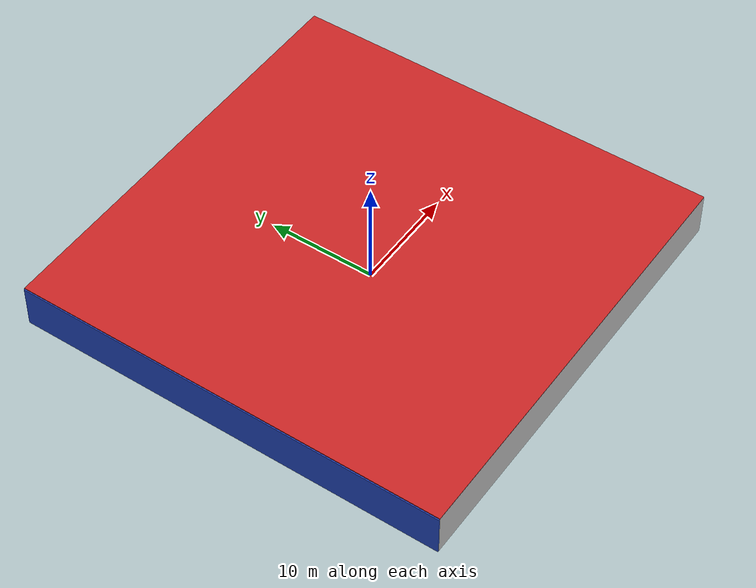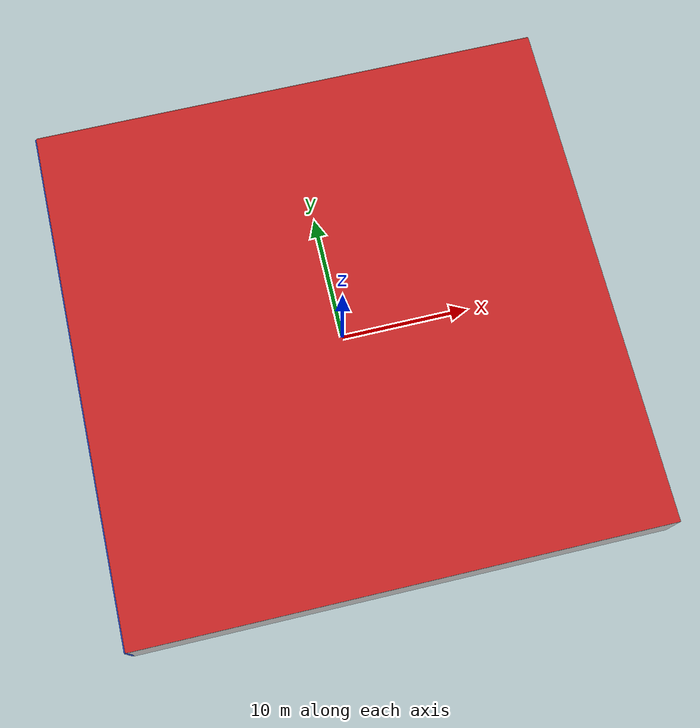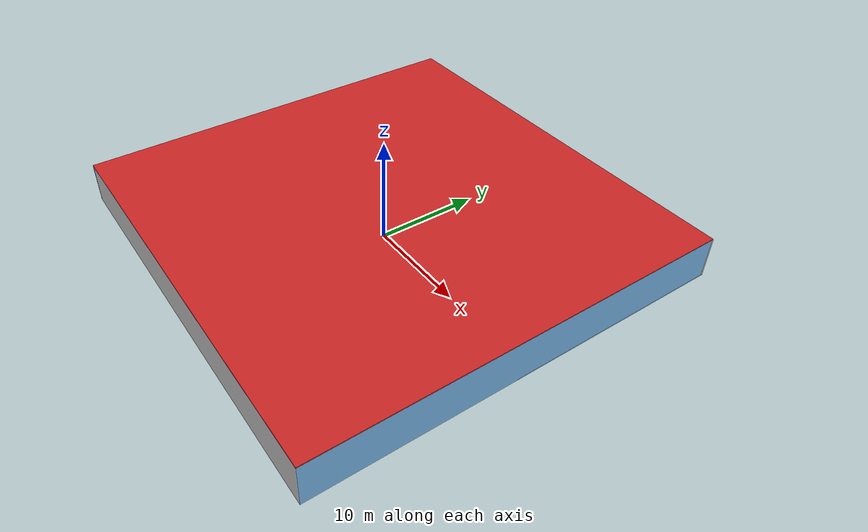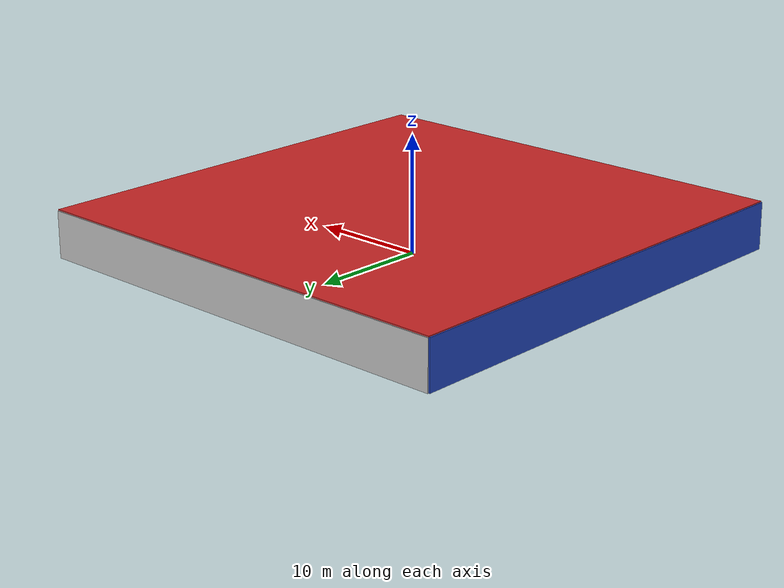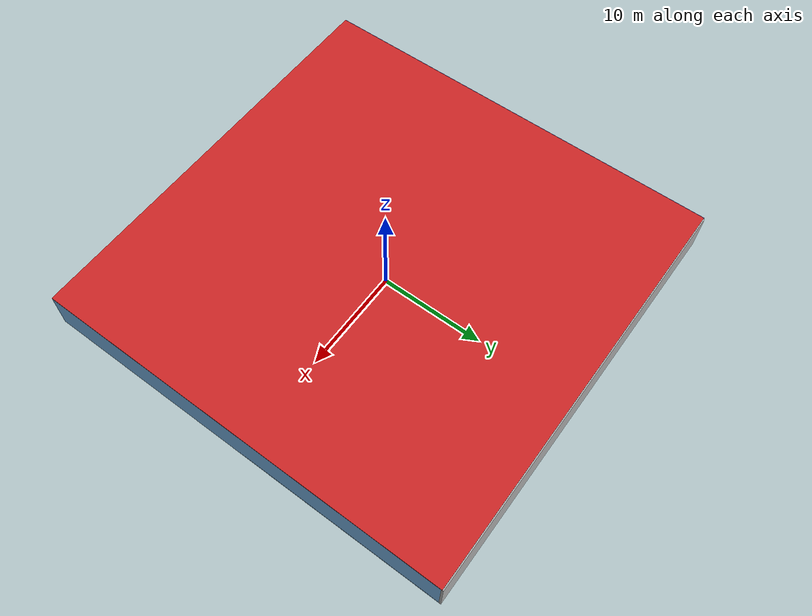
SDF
<sdf version="1.4">
 <world name="default">
  <physics type="ode">
   <max_step_size>0.001</max_step_size>
   <real_time_factor>1</real_time_factor>
   <real_time_update_rate>1000</real_time_update_rate>
   <gravity>0 0 -9.8</gravity>
  </physics>
  <scene><ambient>0.4 0.4 0.4 1</ambient><background>0.7 0.7 0.7 1</background><shadows>1</shadows></scene>
  <model name="Surrounding">
   <static>1</static>
   <link name="Ceiling">
    <collision name="Ceiling_Collision"><geometry><box><size>40 40 0.1</size></box></geometry></collision>
    <visual name="Ceiling_Visual">
     <geometry><box><size>40 40 0.1</size></box></geometry>
     <material>
      <script><uri>file://media/materials/scripts/gazebo.material</uri><name>Gazebo/RedGlow</name></script>
     </material>
    </visual>
    <pose>0 0 4.05 0 0 0</pose>
   </link>
   <link name="Wall_South">
    <collision name="Wall_South_Collision">
     <geometry><box><size>40 0 4</size></box></geometry>
     <pose>0 0 2 0 -0 0</pose>
    </collision>
    <visual name="Wall_South_Visual">
     <pose>0 0 2 0 -0 0</pose>
     <geometry><box><size>40 0 4</size></box></geometry>
     <material>
      <script><uri>file://media/materials/scripts/gazebo.material</uri><name>Gazebo/LightOff</name></script>
     </material>
    </visual>
    <velocity_decay><linear>0</linear><angular>0</angular></velocity_decay>
    <pose>0 -20 0 0 -0 0</pose>
   </link>
   <link name="Wall_East">
    <collision name="Wall_21_Collision">
     <geometry><box><size>40 0 4</size></box></geometry>
     <pose>0 0 2 0 -0 0</pose>
    </collision>
    <visual name="Wall_21_Visual">
     <pose>0 0 2 0 -0 0</pose>
     <geometry><box><size>40 0 4</size></box></geometry>
     <material>
      <script><uri>file://media/materials/scripts/gazebo.material</uri><name>Gazebo/SkyBlue</name></script>
     </material>
    </visual>
    <velocity_decay><linear>0</linear><angular>0</angular></velocity_decay>
    <pose>20 0 0 0 -0 1.5708</pose>
   </link>
   <link name="Wall_North">
    <collision name="Wall_22_Collision">
     <geometry><box><size>40 0.2 4</size></box></geometry>
     <pose>0 0 2 0 -0 0</pose>
    </collision>
    <visual name="Wall_22_Visual">
     <pose>0 0 2 0 -0 0</pose>
     <geometry><box><size>40 0.2 4</size></box></geometry>
     <material>
      <script><uri>file://media/materials/scripts/gazebo.material</uri><name>Gazebo/PioneerBody</name></script>
     </material>
    </visual>
    <velocity_decay><linear>0</linear><angular>0</angular></velocity_decay>
    <pose>0 20 0 0 -0 0</pose>
   </link>
   <link name="Wall_West">
    <collision name="Wall_23_Collision">
     <geometry><box><size>40 0.2 4</size></box></geometry>
     <pose>0 0 2 0 -0 0</pose>
    </collision>
    <visual name="Wall_23_Visual">
     <pose>0 0 2 0 -0 0</pose>
     <geometry><box><size>40 0.2 4</size></box></geometry>
     <material>
      <script><uri>file://media/materials/scripts/gazebo.material</uri><name>Gazebo/BlueLaser</name></script>
     </material>
    </visual>
    <velocity_decay><linear>0</linear><angular>0</angular></velocity_decay>
    <pose>-20 0 0 0 0 -1.5708</pose>
   </link>
   <link name="Ground_link">
    <collision name="collision">
     <pose>0 0 .05 0 -0 0</pose>
     <geometry><box><size>40 40 0.1</size></box></geometry>
    </collision>
    <visual name="visual">
     <pose>0 0 .05 0 -0 0</pose>
     <geometry><box><size>40 40 0.1</size></box></geometry>
     <material>
      <script><uri>file://media/materials/scripts/gazebo.material</uri><name>Gazebo/SkyBlue</name></script>
     </material>
    </visual>
   </link>
   <static>1</static>
  </model>
  <spherical_coordinates>
   <surface_model>EARTH_WGS84</surface_model>
   <latitude_deg>0</latitude_deg>
   <longitude_deg>0</longitude_deg>
   <elevation>0</elevation>
   <heading_deg>0</heading_deg>
  </spherical_coordinates>
  <light name="lightball_0" type="diffuse">
   <diffuse>0.8 0.8 0.8 1</diffuse>
   <specular>0.2 0.2 0.2 1</specular>
   <attenuation>
    <range>100</range>
    <constant>0.7</constant>
    <linear>0.01</linear>
    <quadratic>0.001</quadratic>
   </attenuation>
   <direction>-0.5 0.1 -0.9</direction>
   <pose>13.5689946965 9.14144782216 2.39810601599 0 0 0</pose>
  </light>
  <light name="lightball_1" type="diffuse">
   <diffuse>0.8 0.8 0.8 1</diffuse>
   <specular>0.2 0.2 0.2 1</specular>
   <attenuation>
    <range>100</range>
    <constant>0.7</constant>
    <linear>0.01</linear>
    <quadratic>0.001</quadratic>
   </attenuation>
   <direction>-0.5 0.1 -0.9</direction>
   <pose>-10.8223522201 -15.3570575894 0.753022505138 0 0 0</pose>
  </light>
  <include>
   <uri>model://construction_cone</uri>
   <pose>-17.7437641594 -16.5118286137 0 0 0 0.0227785743377</pose>
  </include>
  <include><uri>model://cabinet</uri><pose>-17.2655481 1.48866020815 0 0 0 2.59336363236</pose></include>
  <include>
   <uri>model://robocup_3Dsim_goal</uri>
   <pose>-15.4309397563 -9.53326624988 0 0 0 1.24814412996</pose>
  </include>
  <include>
   <uri>model://construction_cone</uri>
   <pose>-15.1012539599 12.8994064117 0 0 0 2.48498873908</pose>
  </include>
  <include><uri>model://cabinet</uri><pose>-12.4096555214 -2.41461944414 0 0 0 0.614868048318</pose></include>
  <include>
   <uri>model://first_2015_trash_can</uri>
   <pose>-12.3294693089 12.7316185587 0 0 0 1.15093014816</pose>
  </include>
  <include>
   <uri>model://robocup_3Dsim_goal</uri>
   <pose>-8.26705623673 -5.1770655976 0 0 0 0.323916506379</pose>
  </include>
  <include><uri>model://table</uri><pose>-9.20362860358 0.521924243433 0 0 0 1.3113039739</pose></include>
  <include>
   <uri>model://robocup_3Dsim_goal</uri>
   <pose>-6.47523670173 -12.0321378651 0 0 0 0.328467533106</pose>
  </include>
  <include>
   <uri>model://first_2015_trash_can</uri>
   <pose>-5.31467267288 15.9171883531 0 0 0 0.605096183939</pose>
  </include>
  <include>
   <uri>model://construction_cone</uri>
   <pose>-1.57548150778 -18.2293982375 0 0 0 0.360060964845</pose>
  </include>
  <include>
   <uri>model://construction_cone</uri>
   <pose>-2.7954565121 0.923590863575 0 0 0 2.33201615963</pose>
  </include>
  <include><uri>model://cabinet</uri><pose>-0.0301696100185 -4.76145345391 0 0 0 0.899563184954</pose></include>
  <include>
   <uri>model://first_2015_trash_can</uri>
   <pose>2.74788209001 -11.8645403012 0 0 0 2.34909528422</pose>
  </include>
  <include>
   <uri>model://first_2015_trash_can</uri>
   <pose>2.81596370324 -1.44348998347 0 0 0 0.431942373249</pose>
  </include>
  <include><uri>model://table</uri><pose>5.46946033324 -10.4296156914 0 0 0 2.93388408992</pose></include>
  <include>
   <uri>model://construction_cone</uri>
   <pose>5.67197526959 12.1409392156 0 0 0 0.492530647553</pose>
  </include>
  <include>
   <uri>model://robocup_3Dsim_goal</uri>
   <pose>9.21081789504 -15.0894218737 0 0 0 2.98756517161</pose>
  </include>
  <include>
   <uri>model://first_2015_trash_can</uri>
   <pose>10.2254052645 -7.40735786481 0 0 0 0.910729020715</pose>
  </include>
  <include>
   <uri>model://textured_shapes</uri>
   <pose>8.46641320303 7.39472038785 0 0 0 1.60339800322</pose>
  </include>
  <include><uri>model://table</uri><pose>14.7580731233 -11.9640207479 0 0 0 0.143083074951</pose></include>
  <include><uri>model://cabinet</uri><pose>19.411336731 8.49121802523 0 0 0 0.0525712080174</pose></include>
 </world>
</sdf>

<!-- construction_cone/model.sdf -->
<sdf version="1.5">
  <model name="Construction Cone">
    <link name="link">
      <collision name="collision">
        <geometry>
          <mesh>
            <scale>10 10 10</scale>
            <uri>file://isr-testbed/construction_cone/meshes/construction_cone.dae</uri>
          </mesh>
        </geometry>
      </collision>
      <visual name="visual">
        <geometry>
          <mesh>
            <scale>10 10 10</scale>
            <uri>file://isr-testbed/construction_cone/meshes/construction_cone.dae</uri>
          </mesh>
        </geometry>
      </visual>
    </link>
  </model>
</sdf>

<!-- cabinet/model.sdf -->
<sdf version="1.5">
  <model name="cabinet">
    <static>true</static>
    <link name="cabinet_bottom_plate">
      <inertial>
        <pose>0 0 -1 0 0 0</pose>
        <inertia>
          <ixx>2.050000</ixx>
          <ixy>0</ixy>
          <ixz>0</ixz>
          <iyy>2.050000</iyy>
          <iyz>0</iyz>
          <izz>2.050000</izz>
        </inertia>
        <mass>25.000000</mass>
      </inertial>
      <collision name="cabinet_bottom_plate_geom">
        <pose>0 0 0.010000 0 0 0</pose>
        <geometry>
          <box>
            <size>0.450000 0.450000 0.020000</size>
          </box>
        </geometry>
      </collision>
      <visual name="cabinet_bottom_plate_geom_visual">
        <pose>0 0 0.010000 0 0 0</pose>
        <geometry>
          <box>
            <size>0.450000 0.450000 0.020000</size>
          </box>
        </geometry>
        <material>
          <script>
            <uri>model://media/materials/scripts/gazebo.material</uri>
            <name>Gazebo/Wood</name>
          </script>
        </material>
      </visual>
      <collision name="cabinet_bottom_plate_geom_cabinet_back_plate">
        <pose>0.235000 0 0.510000 0 0 0</pose>
        <geometry>
          <box>
            <size>0.020000 0.450000 1.020000</size>
          </box>
        </geometry>
      </collision>
      <visual name="cabinet_bottom_plate_geom_cabinet_back_plate_visual">
        <pose>0.235000 0 0.510000 0 0 0</pose>
        <geometry>
          <box>
            <size>0.020000 0.450000 1.020000</size>
          </box>
        </geometry>
        <material>
          <script>
            <uri>model://media/materials/scripts/gazebo.material</uri>
            <name>Gazebo/Wood</name>
          </script>
        </material>
      </visual>
      <collision name="cabinet_bottom_plate_geom_cabinet_left_plate">
        <pose>0 0.235000 0.510000 0 0 0</pose>
        <geometry>
          <box>
            <size>0.450000 0.020000 1.020000</size>
          </box>
        </geometry>
      </collision>
      <visual name="cabinet_bottom_plate_geom_cabinet_left_plate_visual">
        <pose>0 0.235000 0.510000 0 0 0</pose>
        <geometry>
          <box>
            <size>0.450000 0.020000 1.020000</size>
          </box>
        </geometry>
        <material>
          <script>
            <uri>model://media/materials/scripts/gazebo.material</uri>
            <name>Gazebo/Wood</name>
          </script>
        </material>
      </visual>
      <collision name="cabinet_bottom_plate_geom_cabinet_middle_plate">
        <pose>0 0 0.510000 0 0 0</pose>
        <geometry>
          <box>
            <size>0.450000 0.450000 0.020000</size>
          </box>
        </geometry>
      </collision>
      <visual name="cabinet_bottom_plate_geom_cabinet_middle_plate_visual">
        <pose>0 0 0.510000 0 0 0</pose>
        <geometry>
          <box>
            <size>0.450000 0.450000 0.020000</size>
          </box>
        </geometry>
        <material>
          <script>
            <uri>model://media/materials/scripts/gazebo.material</uri>
            <name>Gazebo/Wood</name>
          </script>
        </material>
      </visual>
      <collision name="cabinet_bottom_plate_geom_cabinet_right_plate">
        <pose>0 -0.235000 0.510000 0 0 0</pose>
        <geometry>
          <box>
            <size>0.450000 0.020000 1.020000</size>
          </box>
        </geometry>
      </collision>
      <visual name="cabinet_bottom_plate_geom_cabinet_right_plate_visual">
        <pose>0 -0.235000 0.510000 0 0 0</pose>
        <geometry>
          <box>
            <size>0.450000 0.020000 1.020000</size>
          </box>
        </geometry>
        <material>
          <script>
            <uri>model://media/materials/scripts/gazebo.material</uri>
            <name>Gazebo/Wood</name>
          </script>
        </material>
      </visual>
      <collision name="cabinet_bottom_plate_geom_cabinet_top_plate">
        <pose>0 0 1.010000 0 0 0</pose>
        <geometry>
          <box>
            <size>0.450000 0.450000 0.020000</size>
          </box>
        </geometry>
      </collision>
      <visual name="cabinet_bottom_plate_geom_cabinet_top_plate_visual">
        <pose>0 0 1.010000 0 0 0</pose>
        <geometry>
          <box>
            <size>0.450000 0.450000 0.020000</size>
          </box>
        </geometry>
        <material>
          <script>
            <uri>model://media/materials/scripts/gazebo.material</uri>
            <name>Gazebo/Wood</name>
          </script>
        </material>
      </visual>
    </link>
  </model>
</sdf>

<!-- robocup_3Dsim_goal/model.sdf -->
<sdf version="1.5">
  <model name="robocup_3d_goal">
    <static>true</static>
    <link name="left_post">
      <pose>0 1.05 0.45 0 0 0</pose>
      <collision name="collision">
        <geometry>
          <cylinder>
            <radius>0.05</radius>
            <length>0.9</length>
          </cylinder>
        </geometry>
      </collision>
      <visual name="visual">
        <geometry>
          <cylinder>
            <radius>0.05</radius>
            <length>0.9</length>
          </cylinder>
        </geometry>
        <material>
          <script>
            <uri>file://media/materials/scripts/gazebo.material</uri>
            <name>Gazebo/ZincYellow</name>
          </script>
        </material>
      </visual>
    </link>
    <link name="left_support_horiz_lower">
      <pose>0.30 1.05 0.01 0 0 0</pose>
      <collision name="collision">
        <geometry>
          <box>
            <size>0.50 0.02 0.02</size>
          </box>
        </geometry>
      </collision>
      <visual name="visual">
        <geometry>
          <box>
            <size>0.50 0.02 0.02</size>
          </box>
        </geometry>
        <material>
          <script>
            <uri>file://media/materials/scripts/gazebo.material</uri>
            <name>Gazebo/White</name>
          </script>
        </material>
      </visual>
    </link>
    <link name="left_support_horiz_upper">
      <pose>0.30 1.05 0.79 0 0 0</pose>
      <collision name="collision">
        <geometry>
          <box>
            <size>0.50 0.02 0.02</size>
          </box>
        </geometry>
      </collision>
      <visual name="visual">
        <geometry>
          <box>
            <size>0.50 0.02 0.02</size>
          </box>
        </geometry>
        <material>
          <script>
            <uri>file://media/materials/scripts/gazebo.material</uri>
            <name>Gazebo/White</name>
          </script>
        </material>
      </visual>
    </link>
    <link name="left_support_vertical">
      <pose>0.56 1.05 0.4 0 1.5708 0</pose>
      <collision name="collision">
        <geometry>
          <box>
            <size>0.80 0.02 0.02</size>
          </box>
        </geometry>
      </collision>
      <visual name="visual">
        <geometry>
          <box>
            <size>0.80 0.02 0.02</size>
          </box>
        </geometry>
        <material>
          <script>
            <uri>file://media/materials/scripts/gazebo.material</uri>
            <name>Gazebo/White</name>
          </script>
        </material>
      </visual>
    </link>
    <link name="right_support_horiz_lower">
      <pose>0.30 -1.05 0.01 0 0 0</pose>
      <collision name="collision">
        <geometry>
          <box>
            <size>0.50 0.02 0.02</size>
          </box>
        </geometry>
      </collision>
      <visual name="visual">
        <geometry>
          <box>
            <size>0.50 0.02 0.02</size>
          </box>
        </geometry>
        <material>
          <script>
            <uri>file://media/materials/scripts/gazebo.material</uri>
            <name>Gazebo/White</name>
          </script>
        </material>
      </visual>
    </link>
    <link name="right_support_horiz_upper">
      <pose>0.30 -1.05 0.79 0 0 0</pose>
      <collision name="collision">
        <geometry>
          <box>
            <size>0.50 0.02 0.02</size>
          </box>
        </geometry>
      </collision>
      <visual name="visual">
        <geometry>
          <box>
            <size>0.50 0.02 0.02</size>
          </box>
        </geometry>
        <material>
          <script>
            <uri>file://media/materials/scripts/gazebo.material</uri>
            <name>Gazebo/White</name>
          </script>
        </material>
      </visual>
    </link>
    <link name="right_support_vertical">
      <pose>0.56 -1.05 0.4 0 1.5708 0</pose>
      <collision name="collision">
        <geometry>
          <box>
            <size>0.80 0.02 0.02</size>
          </box>
        </geometry>
      </collision>
      <visual name="visual">
        <geometry>
          <box>
            <size>0.80 0.02 0.02</size>
          </box>
        </geometry>
        <material>
          <script>
            <uri>file://media/materials/scripts/gazebo.material</uri>
            <name>Gazebo/White</name>
          </script>
        </material>
      </visual>
    </link>
    <link name="center_support_horiz_lower">
      <pose>0.56 0 0.01 0 1.5708 0</pose>
      <collision name="collision">
        <geometry>
          <box>
            <size>0.02 2.08 0.02</size>
          </box>
        </geometry>
      </collision>
      <visual name="visual">
        <geometry>
          <box>
            <size>0.02 2.08 0.02</size>
          </box>
        </geometry>
        <material>
          <script>
            <uri>file://media/materials/scripts/gazebo.material</uri>
            <name>Gazebo/White</name>
          </script>
        </material>
      </visual>
    </link>
    <link name="center_support_horiz_upper">
      <pose>0.56 0 0.79 0 1.5708 0</pose>
      <collision name="collision">
        <geometry>
          <box>
            <size>0.02 2.08 0.02</size>
          </box>
        </geometry>
      </collision>
      <visual name="visual">
        <geometry>
          <box>
            <size>0.02 2.08 0.02</size>
          </box>
        </geometry>
        <material>
          <script>
            <uri>file://media/materials/scripts/gazebo.material</uri>
            <name>Gazebo/White</name>
          </script>
        </material>
      </visual>
    </link>
    <link name="right_post">
      <pose>0 -1.05 0.45 0 0 0</pose>
      <collision name="collision">
        <geometry>
          <cylinder>
            <radius>0.05</radius>
            <length>0.9</length>
          </cylinder>
        </geometry>
      </collision>
      <visual name="visual">
        <geometry>
          <cylinder>
            <radius>0.05</radius>
            <length>0.9</length>
          </cylinder>
        </geometry>
        <material>
          <script>
            <uri>file://media/materials/scripts/gazebo.material</uri>
            <name>Gazebo/ZincYellow</name>
          </script>
        </material>
      </visual>
    </link>
    <link name="crossbar">
      <pose>0 0 0.85 1.57 1.57 0</pose>
      <collision name="collision">
        <geometry>
          <cylinder>
            <radius>0.05</radius>
            <length>2.0</length>
          </cylinder>
        </geometry>
      </collision>
      <visual name="visual">
        <geometry>
          <cylinder>
            <radius>0.05</radius>
            <length>2.0</length>
          </cylinder>
        </geometry>
        <material>
          <script>
            <uri>file://media/materials/scripts/gazebo.material</uri>
            <name>Gazebo/ZincYellow</name>
          </script>
        </material>
      </visual>
    </link>
    <link name="center_net">
      <pose>0.56 0 0.40 0 0 0</pose>
      <collision name="collision">
        <geometry>
          <box>
            <size>0.01 2.1 0.80</size>
          </box>
        </geometry>
      </collision>
      <visual name="visual">
        <geometry>
          <box>
            <size>0.01 2.1 0.80</size>
          </box>
        </geometry>
        <material>
          <script>
            <uri>model://../model_source/models/robocup09_spl_field/materials/scripts/</uri>
            <uri>model://../model_source/models/robocup09_spl_field/materials/textures/</uri>
            <name>RoboCup/Net</name>
          </script>
        </material>
      </visual>
    </link>
    <link name="left_net">
      <pose>0.30 1.05 0.40 0 0 0</pose>
      <collision name="collision">
        <geometry>
          <box>
            <size>0.50 0.01 0.76</size>
          </box>
        </geometry>
      </collision>
      <visual name="visual">
        <geometry>
          <box>
            <size>0.50 0.01 0.76</size>
          </box>
        </geometry>
        <material>
          <script>
            <uri>model://../model_source/models/robocup09_spl_field/materials/scripts/</uri>
            <uri>model://../model_source/models/robocup09_spl_field/materials/textures/</uri>
            <name>RoboCup/Net</name>
          </script>
        </material>
      </visual>
    </link>
    <link name="right_net">
      <pose>0.30 -1.05 0.40 0 0 0</pose>
      <collision name="collision">
        <geometry>
          <box>
            <size>0.50 0.01 0.76</size>
          </box>
        </geometry>
      </collision>
      <visual name="visual">
        <geometry>
          <box>
            <size>0.50 0.01 0.76</size>
          </box>
        </geometry>
        <material>
          <script>
            <uri>model://../model_source/models/robocup09_spl_field/materials/scripts/</uri>
            <uri>model://../model_source/models/robocup09_spl_field/materials/textures/</uri>
            <name>RoboCup/Net</name>
          </script>
        </material>
      </visual>
    </link>
  </model>
</sdf>

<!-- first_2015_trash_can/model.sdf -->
<sdf version="1.5">
  <model name="first_2015_trash_can">
    <link name="link">
      <inertial>
        <pose>0 0 0.3683 0 0 0</pose>
        <mass>4.83076</mass>
        <inertia>
          <ixx>0.281534052</ixx>
          <ixy>0</ixy>
          <ixz>0</ixz>
          <iyy>0.281534052</iyy>
          <iyz>0</iyz>
          <izz>0.126222831</izz>
        </inertia>
      </inertial>

      <visual name="visual">
        <geometry>
          <mesh>
            <uri>model://first_2015_trash_can/meshes/trash_can.dae</uri>
          </mesh>
        </geometry>
      </visual>

      <collision name="collision">
        <geometry>
          <mesh>
            <uri>model://first_2015_trash_can/meshes/trash_can.dae</uri>
          </mesh>
        </geometry>
      </collision>
    </link>
  </model>
</sdf>

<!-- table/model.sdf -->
<sdf version="1.5">
  <model name="table">
    <static>true</static>
    <link name="link">
      <collision name="surface">
        <pose>0 0 1.0 0 0 0</pose>
        <geometry>
          <box>
            <size>1.5 0.8 0.03</size>
          </box>
        </geometry>
        <surface>
          <friction>
            <ode>
              <mu>0.6</mu>
              <mu2>0.6</mu2>
            </ode>
          </friction>
        </surface>
      </collision>
      <visual name="visual1">
        <pose>0 0 1.0 0 0 0</pose>
        <geometry>
          <box>
            <size>1.5 0.8 0.03</size>
          </box>
        </geometry>
        <material>
          <script>
            <uri>model://media/materials/scripts/gazebo.material</uri>
            <name>Gazebo/Wood</name>
          </script>
        </material>
      </visual>
      <collision name="front_left_leg">
        <pose>0.68 0.38 0.5 0 0 0</pose>
        <geometry>
          <cylinder>
            <radius>0.02</radius>
            <length>1.0</length>
          </cylinder>
        </geometry>
      </collision>
      <visual name="front_left_leg">
        <pose>0.68 0.38 0.5 0 0 0</pose>
        <geometry>
          <cylinder>
            <radius>0.02</radius>
            <length>1.0</length>
          </cylinder>
        </geometry>
        <material>
          <script>
            <uri>model://media/materials/scripts/gazebo.material</uri>
            <name>Gazebo/Grey</name>
          </script>
        </material>
      </visual>
      <collision name="front_right_leg">
        <pose>0.68 -0.38 0.5 0 0 0</pose>
        <geometry>
          <cylinder>
            <radius>0.02</radius>
            <length>1.0</length>
          </cylinder>
        </geometry>
      </collision>
      <visual name="front_right_leg">
        <pose>0.68 -0.38 0.5 0 0 0</pose>
        <geometry>
          <cylinder>
            <radius>0.02</radius>
            <length>1.0</length>
          </cylinder>
        </geometry>
        <material>
          <script>
            <uri>model://media/materials/scripts/gazebo.material</uri>
            <name>Gazebo/Grey</name>
          </script>
        </material>
      </visual>
      <collision name="back_right_leg">
        <pose>-0.68 -0.38 0.5 0 0 0</pose>
        <geometry>
          <cylinder>
            <radius>0.02</radius>
            <length>1.0</length>
          </cylinder>
        </geometry>
      </collision>
      <visual name="back_right_leg">
        <pose>-0.68 -0.38 0.5 0 0 0</pose>
        <geometry>
          <cylinder>
            <radius>0.02</radius>
            <length>1.0</length>
          </cylinder>
        </geometry>
        <material>
          <script>
            <uri>model://media/materials/scripts/gazebo.material</uri>
            <name>Gazebo/Grey</name>
          </script>
        </material>
      </visual>
      <collision name="back_left_leg">
        <pose>-0.68 0.38 0.5 0 0 0</pose>
        <geometry>
          <cylinder>
            <radius>0.02</radius>
            <length>1.0</length>
          </cylinder>
        </geometry>
      </collision>
      <visual name="back_left_leg">
        <pose>-0.68 0.38 0.5 0 0 0</pose>
        <geometry>
          <cylinder>
            <radius>0.02</radius>
            <length>1.0</length>
          </cylinder>
        </geometry>
        <material>
          <script>
            <uri>model://media/materials/scripts/gazebo.material</uri>
            <name>Gazebo/Grey</name>
          </script>
        </material>
      </visual>
    </link>
  </model>
</sdf>

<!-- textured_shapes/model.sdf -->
<sdf version="1.6">
  <model name="textured_shapes">
    <pose>0 0 0.5 0 0 0</pose>
    <link name="box">
      <pose>0 -1.5 0 0 0 0</pose>
      <collision name="collision">
        <geometry>
          <box>
            <size>1 1 1</size>
          </box>
        </geometry>
      </collision>
      <visual name="visual">
        <geometry>
          <box>
            <size>1 1 1</size>
          </box>
        </geometry>
        <material>
          <script>
            <uri>model://../model_source/models/textured_shapes/materials/scripts</uri>
            <uri>model://../model_source/models/textured_shapes/materials/textures</uri>
            <name>TexturedShape/Squares</name>
          </script>
        </material>
      </visual>
    </link>
    <link name="sphere">
      <collision name="collision">
        <geometry>
          <sphere>
            <radius>0.5</radius>
          </sphere>
        </geometry>
      </collision>
      <visual name="visual">
        <geometry>
          <sphere>
            <radius>0.5</radius>
          </sphere>
        </geometry>
        <material>
          <script>
            <uri>model://../model_source/models/textured_shapes/materials/scripts</uri>
            <uri>model://../model_source/models/textured_shapes/materials/textures</uri>
            <name>TexturedShape/Squares</name>
          </script>
        </material>
      </visual>
    </link>
    <link name="cylinder">
      <pose>0 1.5 0 0 0 0</pose>
      <collision name="collision">
        <geometry>
          <cylinder>
            <radius>0.5</radius>
            <length>1</length>
          </cylinder>
        </geometry>
      </collision>
      <visual name="visual">
        <geometry>
          <cylinder>
            <radius>0.5</radius>
            <length>1</length>
          </cylinder>
        </geometry>
        <material>
          <script>
            <uri>model://../model_source/models/textured_shapes/materials/scripts</uri>
            <uri>model://../model_source/models/textured_shapes/materials/textures</uri>
            <name>TexturedShape/Squares</name>
          </script>
        </material>
      </visual>
    </link>
  </model>
</sdf>
